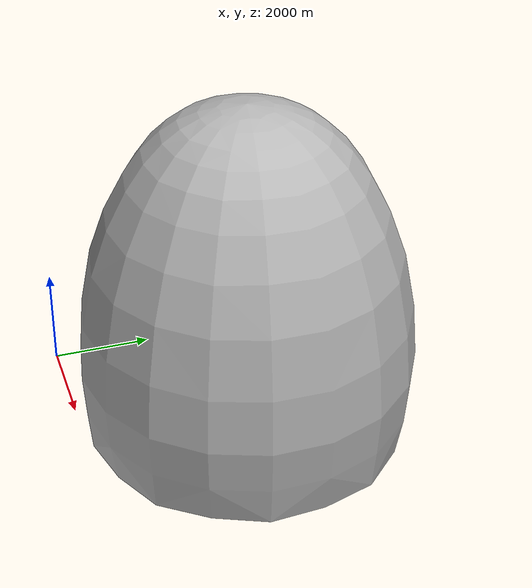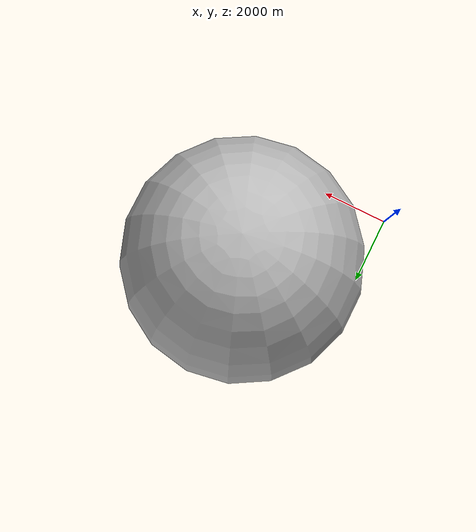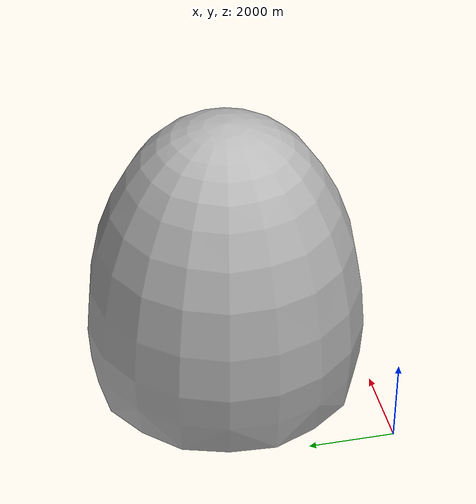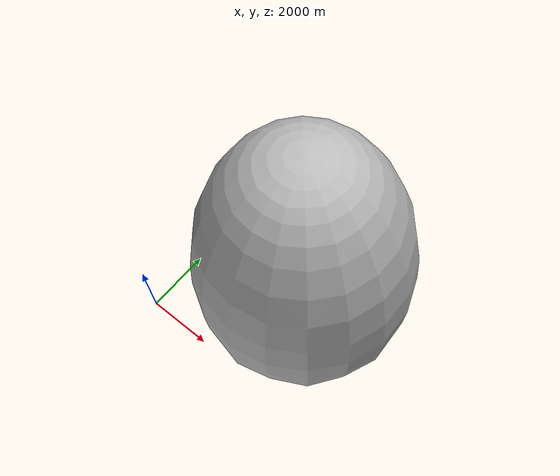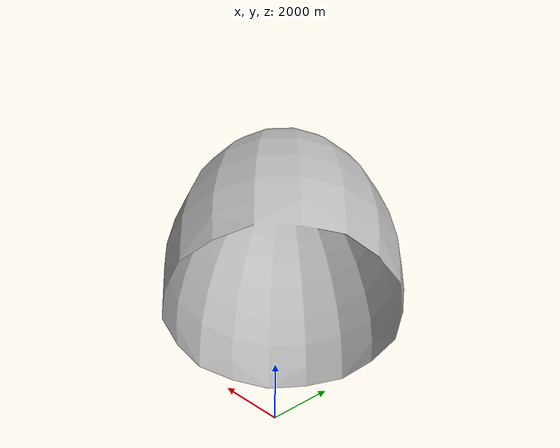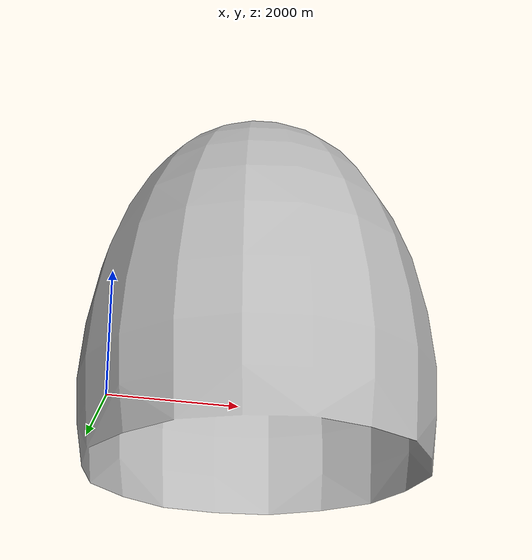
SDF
<?xml version='1.0'?>
<sdf version="1.4">
<model name="yoshi_egg">
  <pose>0 0 0.5 0 0 0</pose>
  <static>true</static>
    <link name="link">
      <inertial>
        <mass>1.0</mass>
        <inertia> <!-- interias are tricky to compute -->
          <!-- http://answers.gazebosim.org/question/4372/the-inertia-matrix-explained/ -->
          <ixx>0.083</ixx>       <!-- for a box: ixx = 0.083 * mass * (y*y + z*z) -->
          <ixy>0.0</ixy>         <!-- for a box: ixy = 0 -->
          <ixz>0.0</ixz>         <!-- for a box: ixz = 0 -->
          <iyy>0.083</iyy>       <!-- for a box: iyy = 0.083 * mass * (x*x + z*z) -->
          <iyz>0.0</iyz>         <!-- for a box: iyz = 0 -->
          <izz>0.083</izz>       <!-- for a box: izz = 0.083 * mass * (x*x + y*y) -->
        </inertia>
      </inertial>
      <collision name="collision">
        <pose frame=''>0 0 0 0 -0 0</pose>
        <geometry>
          <mesh>
            <uri>model://yoshi_egg/yoshi_egg.dae</uri>
            <scale>1 1 1</scale>
          </mesh>
        </geometry>
      </collision>
      <visual name="visual">
        <pose frame=''>0 0 0 0 -0 0</pose>
        <geometry>
          <mesh>
            <uri>model://yoshi_egg/yoshi_egg.dae</uri>
            <scale>1 1 1</scale>
          </mesh>
        </geometry>
      </visual>
    </link>
  </model>
</sdf>
